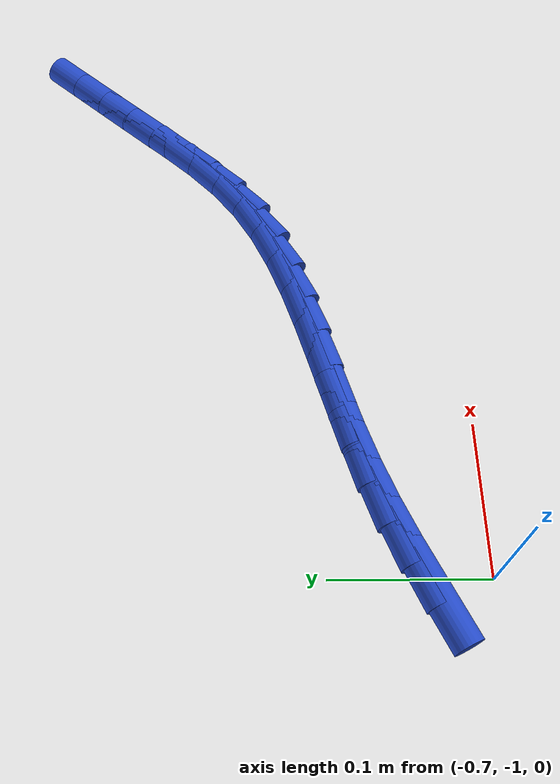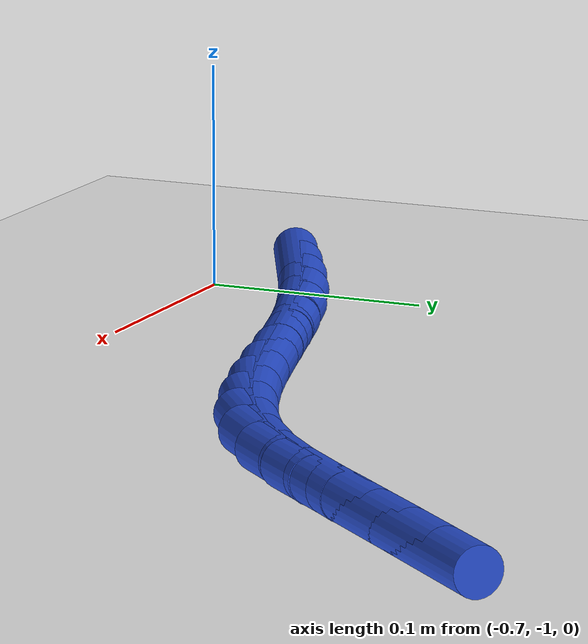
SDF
<sdf version="1.6">
 <world name="default">
  <model name="ground_plane">
   <static>1</static>
   <link name="link">
    <collision name="collision">
     <geometry><plane><normal>0 0 1</normal><size>100 100</size></plane></geometry>
     <surface><friction><ode><mu>100</mu><mu2>50</mu2></ode></friction></surface>
    </collision>
    <visual name="visual">
     <cast_shadows>0</cast_shadows>
     <geometry><plane><normal>0 0 1</normal><size>100 100</size></plane></geometry>
     <material>
      <script><uri>file://media/materials/scripts/gazebo.material</uri><name>Gazebo/WhiteGlow</name></script>
     </material>
    </visual>
   </link>
  </model>
  <model name="line">
   <link name="link_232">
    <pose>-0.7055348889533964 -0.9607961995294042 0.01 0 1.57 0.45788836168627745</pose>
    <collision name="collision">
     <geometry><cylinder><radius>0.01</radius><length>0.08</length></cylinder></geometry>
    </collision>
    <visual name="visual">
     <material>
      <script><name>Gazebo/Blue</name><uri>file://media/materials/scripts/gazebo.material</uri></script>
     </material>
     <geometry><cylinder><radius>0.01</radius><length>0.08</length></cylinder></geometry>
    </visual>
   </link>
   <link name="link_233">
    <pose>-0.6816144685882648 -0.9490077013004771 0.01 0 1.57 0.423842672178727</pose>
    <collision name="collision">
     <geometry><cylinder><radius>0.01</radius><length>0.08</length></cylinder></geometry>
    </collision>
    <visual name="visual">
     <material>
      <script><name>Gazebo/Blue</name><uri>file://media/materials/scripts/gazebo.material</uri></script>
     </material>
     <geometry><cylinder><radius>0.01</radius><length>0.08</length></cylinder></geometry>
    </visual>
   </link>
   <link name="link_234">
    <pose>-0.6572361165551486 -0.9380084449148836 0.01 0 1.57 0.38032184114901413</pose>
    <collision name="collision">
     <geometry><cylinder><radius>0.01</radius><length>0.08</length></cylinder></geometry>
    </collision>
    <visual name="visual">
     <material>
      <script><name>Gazebo/Blue</name><uri>file://media/materials/scripts/gazebo.material</uri></script>
     </material>
     <geometry><cylinder><radius>0.01</radius><length>0.08</length></cylinder></geometry>
    </visual>
   </link>
   <link name="link_235">
    <pose>-0.6322737245699908 -0.9280288312189845 0.01 0 1.57 0.33086623729848735</pose>
    <collision name="collision">
     <geometry><cylinder><radius>0.01</radius><length>0.08</length></cylinder></geometry>
    </collision>
    <visual name="visual">
     <material>
      <script><name>Gazebo/Blue</name><uri>file://media/materials/scripts/gazebo.material</uri></script>
     </material>
     <geometry><cylinder><radius>0.01</radius><length>0.08</length></cylinder></geometry>
    </visual>
   </link>
   <link name="link_236">
    <pose>-0.6066454537726339 -0.9192256990307046 0.01 0 1.57 0.2955412311360704</pose>
    <collision name="collision">
     <geometry><cylinder><radius>0.01</radius><length>0.08</length></cylinder></geometry>
    </collision>
    <visual name="visual">
     <material>
      <script><name>Gazebo/Blue</name><uri>file://media/materials/scripts/gazebo.material</uri></script>
     </material>
     <geometry><cylinder><radius>0.01</radius><length>0.08</length></cylinder></geometry>
    </visual>
   </link>
   <link name="link_237">
    <pose>-0.5805545692615607 -0.911282132967779 0.01 0 1.57 0.2815500116866891</pose>
    <collision name="collision">
     <geometry><cylinder><radius>0.01</radius><length>0.08</length></cylinder></geometry>
    </collision>
    <visual name="visual">
     <material>
      <script><name>Gazebo/Blue</name><uri>file://media/materials/scripts/gazebo.material</uri></script>
     </material>
     <geometry><cylinder><radius>0.01</radius><length>0.08</length></cylinder></geometry>
    </visual>
   </link>
   <link name="link_238">
    <pose>-0.5543173331072357 -0.9036934517875886 0.01 0 1.57 0.2885977447786802</pose>
    <collision name="collision">
     <geometry><cylinder><radius>0.01</radius><length>0.08</length></cylinder></geometry>
    </collision>
    <visual name="visual">
     <material>
      <script><name>Gazebo/Blue</name><uri>file://media/materials/scripts/gazebo.material</uri></script>
     </material>
     <geometry><cylinder><radius>0.01</radius><length>0.08</length></cylinder></geometry>
    </visual>
   </link>
   <link name="link_239">
    <pose>-0.528250290388925 -0.8959545039748149 0.01 0 1.57 0.3170849980535942</pose>
    <collision name="collision">
     <geometry><cylinder><radius>0.01</radius><length>0.08</length></cylinder></geometry>
    </collision>
    <visual name="visual">
     <material>
      <script><name>Gazebo/Blue</name><uri>file://media/materials/scripts/gazebo.material</uri></script>
     </material>
     <geometry><cylinder><radius>0.01</radius><length>0.08</length></cylinder></geometry>
    </visual>
   </link>
   <link name="link_240">
    <pose>-0.5026699861858941 -0.8875601380141394 0.01 0 1.57 0.3680634834019204</pose>
    <collision name="collision">
     <geometry><cylinder><radius>0.01</radius><length>0.08</length></cylinder></geometry>
    </collision>
    <visual name="visual">
     <material>
      <script><name>Gazebo/Blue</name><uri>file://media/materials/scripts/gazebo.material</uri></script>
     </material>
     <geometry><cylinder><radius>0.01</radius><length>0.08</length></cylinder></geometry>
    </visual>
   </link>
   <link name="link_241">
    <pose>-0.47789296557740873 -0.8780052023902434 0.01 0 1.57 0.44287879274432557</pose>
    <collision name="collision">
     <geometry><cylinder><radius>0.01</radius><length>0.08</length></cylinder></geometry>
    </collision>
    <visual name="visual">
     <material>
      <script><name>Gazebo/Blue</name><uri>file://media/materials/scripts/gazebo.material</uri></script>
     </material>
     <geometry><cylinder><radius>0.01</radius><length>0.08</length></cylinder></geometry>
    </visual>
   </link>
   <link name="link_242">
    <pose>-0.4542357736427349 -0.8667845455878078 0.01 0 1.57 0.5423708166305076</pose>
    <collision name="collision">
     <geometry><cylinder><radius>0.01</radius><length>0.08</length></cylinder></geometry>
    </collision>
    <visual name="visual">
     <material>
      <script><name>Gazebo/Blue</name><uri>file://media/materials/scripts/gazebo.material</uri></script>
     </material>
     <geometry><cylinder><radius>0.01</radius><length>0.08</length></cylinder></geometry>
    </visual>
   </link>
   <link name="link_243">
    <pose>-0.43201495546113733 -0.8533930160915139 0.01 0 1.57 0.6639064137738834</pose>
    <collision name="collision">
     <geometry><cylinder><radius>0.01</radius><length>0.08</length></cylinder></geometry>
    </collision>
    <visual name="visual">
     <material>
      <script><name>Gazebo/Blue</name><uri>file://media/materials/scripts/gazebo.material</uri></script>
     </material>
     <geometry><cylinder><radius>0.01</radius><length>0.08</length></cylinder></geometry>
    </visual>
   </link>
   <link name="link_244">
    <pose>-0.4115238513807513 -0.8373611168570708 0.01 0 1.57 0.7724809531978755</pose>
    <collision name="collision">
     <geometry><cylinder><radius>0.01</radius><length>0.08</length></cylinder></geometry>
    </collision>
    <visual name="visual">
     <material>
      <script><name>Gazebo/Blue</name><uri>file://media/materials/scripts/gazebo.material</uri></script>
     </material>
     <geometry><cylinder><radius>0.01</radius><length>0.08</length></cylinder></geometry>
    </visual>
   </link>
   <link name="link_245">
    <pose>-0.39259990200198985 -0.8189198486935694 0.01 0 1.57 0.839253752678516</pose>
    <collision name="collision">
     <geometry><cylinder><radius>0.01</radius><length>0.08</length></cylinder></geometry>
    </collision>
    <visual name="visual">
     <material>
      <script><name>Gazebo/Blue</name><uri>file://media/materials/scripts/gazebo.material</uri></script>
     </material>
     <geometry><cylinder><radius>0.01</radius><length>0.08</length></cylinder></geometry>
    </visual>
   </link>
   <link name="link_246">
    <pose>-0.3746640945802239 -0.7989401001830067 0.01 0 1.57 0.865987810153032</pose>
    <collision name="collision">
     <geometry><cylinder><radius>0.01</radius><length>0.08</length></cylinder></geometry>
    </collision>
    <visual name="visual">
     <material>
      <script><name>Gazebo/Blue</name><uri>file://media/materials/scripts/gazebo.material</uri></script>
     </material>
     <geometry><cylinder><radius>0.01</radius><length>0.08</length></cylinder></geometry>
    </visual>
   </link>
   <link name="link_247">
    <pose>-0.3571223631694255 -0.7783159149450236 0.01 0 1.57 0.8641233384531768</pose>
    <collision name="collision">
     <geometry><cylinder><radius>0.01</radius><length>0.08</length></cylinder></geometry>
    </collision>
    <visual name="visual">
     <material>
      <script><name>Gazebo/Blue</name><uri>file://media/materials/scripts/gazebo.material</uri></script>
     </material>
     <geometry><cylinder><radius>0.01</radius><length>0.08</length></cylinder></geometry>
    </visual>
   </link>
   <link name="link_248">
    <pose>-0.33953669919298207 -0.7577180179488829 0.01 0 1.57 0.8603423435311528</pose>
    <collision name="collision">
     <geometry><cylinder><radius>0.01</radius><length>0.08</length></cylinder></geometry>
    </collision>
    <visual name="visual">
     <material>
      <script><name>Gazebo/Blue</name><uri>file://media/materials/scripts/gazebo.material</uri></script>
     </material>
     <geometry><cylinder><radius>0.01</radius><length>0.08</length></cylinder></geometry>
    </visual>
   </link>
   <link name="link_249">
    <pose>-0.3218933250014615 -0.7372100581990128 0.01 0 1.57 0.8590989421598109</pose>
    <collision name="collision">
     <geometry><cylinder><radius>0.01</radius><length>0.08</length></cylinder></geometry>
    </collision>
    <visual name="visual">
     <material>
      <script><name>Gazebo/Blue</name><uri>file://media/materials/scripts/gazebo.material</uri></script>
     </material>
     <geometry><cylinder><radius>0.01</radius><length>0.08</length></cylinder></geometry>
    </visual>
   </link>
  </model>
 </world>
</sdf>
